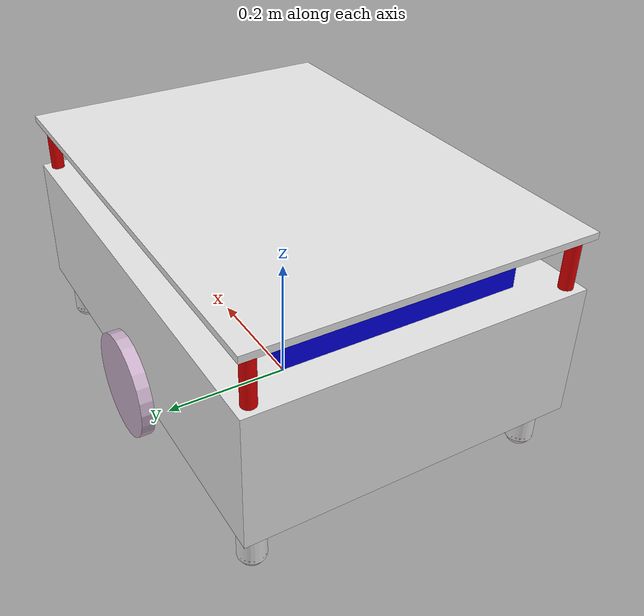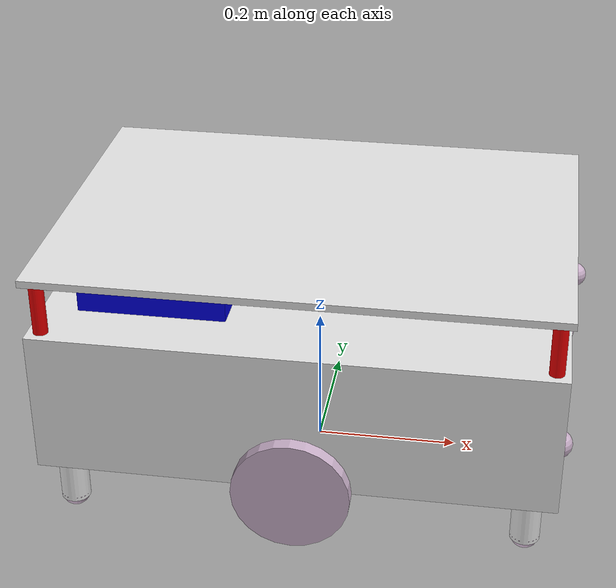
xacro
<?xml version="1.0"?>
<robot name="agv_model" xmlns:xacro="http://www.ros.org/wiki/xacro">

    <xacro:property name="base_length" value="0.7"/>
    <xacro:property name="base_width" value="0.5"/>
    <xacro:property name="base_height" value="0.2"/>

    <xacro:macro name = "box_inertia" params="m l w h xyz rpy">
        <inertial>
            <origin xyz="${xyz}" rpy="${rpy}"/>
            <mass value="${m}"/>
            <inertia ixx="${(m/12.0) * (h*h + l*l)}" ixy="0" ixz="0"
            iyy="${(m/12.0) * (w*w + l*l)}" iyz="0"
            izz="${(m/12.0) * (w*w + h*h)}"/>
        </inertial>
    </xacro:macro>

    <xacro:macro name = "cylinder_inertia" params = "m r h xyz rpy">
        <inertial>
            <origin xyz="${xyz}" rpy="${rpy}"/>
            <mass value="${m}"/>
            <inertia ixx="${(m/12.0) * (3*r*r + h*h)}" ixy="0" ixz="0"
            iyy="${(m/12.0) * (3*r*r + h*h)}" iyz="0"
            izz="${(m/2.0) * (r*r)}" />
        </inertial>
    </xacro:macro>

    <xacro:macro name = "sphere_inertia" params = "m r xyz rpy">
        <inertial>
            <origin xyz="${xyz}" rpy="${rpy}"/>
            <mass value="${m}"/>
            <inertia ixx="${(2/5) * (m * r*r)}" ixy="0" ixz="0"
                     iyy="${(2/5) * (m * r*r)}" iyz="0"
                     izz="${(2/5) * (m * r*r)}"/>
        </inertial>
    </xacro:macro>

    <material name = "White">
        <color rgba="0.9 0.9 0.9 1.0"/>
    </material>

    <material name = "Grey">
        <color rgba = "0.8 0.7 0.8"/>
    </material>

    <material name = "Red">
        <color rgba = "0.9 0.0 0.0 1.0"/>
    </material>

    <material name = "Green">
        <color rgba = "0.0 0.9 0.0 1.0"/>
    </material>

    <material name = "Blue">
        <color rgba = "0.0 0.0 0.9 1.0"/>
    </material>

    <link name = "base_footprint"/>

    <gazebo reference="base_link">
        <material>Gazebo/Orange</material>
    </gazebo>

    <gazebo reference="right_wheel_link">
        <material>Gazebo/Grey</material>
    </gazebo>

    <gazebo reference="left_wheel_link">
        <material>Gazebo/Grey</material>
    </gazebo>

    <gazebo reference="right_front_caster_wheel_link">
        <material>Gazebo/Grey</material>
        <mu1 value="0.1"/>
        <mu2 value="0.1"/>
    </gazebo>

    <gazebo reference="right_back_caster_wheel_link">
        <material>Gazebo/Grey</material>
        <mu1 value="0.1"/>
        <mu2 value="0.1"/>
    </gazebo>

    <gazebo reference="left_front_caster_wheel_link">
        <material>Gazebo/Grey</material>
        <mu1 value="0.1"/>
        <mu2 value="0.1"/>
    </gazebo>

    <gazebo reference="left_back_caster_wheel_link">
        <material>Gazebo/Grey</material>
        <mu1 value="0.1"/>
        <mu2 value="0.1"/>
    </gazebo>

    <gazebo reference="second_link">
        <material>Gazebo/Grey</material>
    </gazebo>

    <gazebo>
        <plugin name="differential_drive_controller" filename="libgazebo_ros_diff_drive.so">
            <always_on>true</always_on>
            <legacy_mode>false</legacy_mode>
            <update_rate>40</update_rate>
            <left_joint>left_wheel_base_joint</left_joint>
            <right_joint>right_wheel_base_joint</right_joint>
            <wheel_separation>0.52</wheel_separation>
            <wheel_diameter>0.16</wheel_diameter>
            <torque>20</torque>
            <command_topic>/cmd_vel:cmd_vel</command_topic>
            <odometry_topic>odom</odometry_topic>
            <odometry_frame>odom</odometry_frame>
            <robot_base_frame>base_footprint</robot_base_frame>
        </plugin>
    </gazebo>

    <gazebo reference="camera_link">
        <material>Gazebo/Grey</material>
        <sensor name="camera_sensor" type="camera">
            <pose>0 0 0 0 0 0</pose>
            <visualize>true</visualize>
            <update_rate>20.0</update_rate>
            <plugin name="camera_controller" filename="libgazebo_ros_camera.so">
                <frame_name>camera_link_frame</frame_name>
            </plugin>
        </sensor>
    </gazebo>

    <link name = "base_link">
        <visual>
            <geometry>
                <box size="0.7 0.5 0.2"/>
            </geometry>
            <origin xyz="0 0 0.1" rpy="0 0 0"/>
            <material name = "White"/>
        </visual>
        <collision>
            <geometry>
                <box size="0.7 0.5 0.2"/>
            </geometry>
            <origin xyz="0 0 0.1" rpy="0 0 0"/>
        </collision>
        <xacro:box_inertia m="10.0" l="0.2" w="0.7" h="0.5"
                           xyz="0 0 0.1 " rpy="0 0 0"/>
    </link>

    <link name = "second_link">
        <visual>
            <geometry>
                <box size = "0.1 0.14 0.06"/>
            </geometry>
            <origin xyz = "-0.15 0.0 0.033" rpy="0.0 0.0 0.0"/>
            <material name = "Blue"/>
        </visual>
        <collision>
            <geometry>
                <box size = "0.1 0.14 0.06"/>
            </geometry>
            <origin xyz = "-0.15 0.0 0.033" rpy="0.0 0.0 0.0"/>
        </collision>
        <xacro:box_inertia m="0.5" l="0.06" w="0.1" h="0.14"
                           xyz="-0.15 0.0 0.033" rpy="0.0 0.0 0.0"/>
    </link>

    <link name = "control_box_link">
        <visual>
            <geometry>
                <box size = "0.2 0.34 0.05"/>
            </geometry>
            <origin xyz = "-0.15 0.0 0.026" rpy="0.0 0.0 0.0"/>
            <material name = "Blue"/>
        </visual>
        <collision>
            <geometry>
                <box size = "0.2 0.34 0.05"/>
            </geometry>
            <origin xyz = "-0.15 0.0 0.026" rpy="0.0 0.0 0.0"/>
        </collision>
        <xacro:box_inertia m="1.0" l="0.05" w="0.2" h="0.34"
                           xyz="-0.15 0.0 0.026" rpy="0.0 0.0 0.0"/>
    </link>

    <link name = "third_link">
        <visual>
            <geometry>
                <cylinder radius="0.01" length="0.08"/>
            </geometry>
            <origin xyz = "-0.018 0 0.04" rpy = "0 0 0"/>
            <material name = "Red"/>
        </visual>
        <collision>
            <geometry>
                <cylinder radius="0.01" length="0.08"/>
            </geometry>
            <origin xyz = "-0.018 0 0.04" rpy = "0 0 0"/>
        </collision>
        <xacro:cylinder_inertia m="0.3" r="0.01" h="0.08"
                                xyz="-0.018 0 0.04" rpy="0 0 0"/>
    </link>

    <link name = "fourth_link">
        <visual>
            <geometry>
                <cylinder radius="0.01" length="0.08"/>
            </geometry>
            <origin xyz = "-0.018 0 0.04" rpy = "0 0 0"/>
            <material name = "Red"/>
        </visual>
        <collision>
            <geometry>
                <cylinder radius="0.01" length="0.08"/>
            </geometry>
            <origin xyz = "-0.018 0 0.04" rpy = "0 0 0"/>
        </collision>
        <xacro:cylinder_inertia m="0.3" r="0.01" h="0.08"
                                xyz="-0.018 0 0.04" rpy="0 0 0"/>
    </link>

    <link name = "fifth_link">
        <visual>
            <geometry>
                <cylinder radius="0.01" length="0.08"/>
            </geometry>
            <origin xyz = "0.018 0 0.04" rpy = "0 0 0"/>
            <material name = "Red"/>
        </visual>
        <collision>
            <geometry>
                <cylinder radius="0.01" length="0.08"/>
            </geometry>
            <origin xyz = "0.018 0 0.04" rpy = "0 0 0"/>
        </collision>
        <xacro:cylinder_inertia m="0.3" r="0.01" h="0.08"
                                xyz="0.018 0 0.04" rpy="0 0 0"/>
    </link>

    <link name = "sixth_link">
        <visual>
            <geometry>
                <cylinder radius="0.01" length="0.08"/>
            </geometry>
            <origin xyz = "0.018 0 0.04" rpy = "0 0 0"/>
            <material name = "Red"/>
        </visual>
        <collision>
            <geometry>
                <cylinder radius="0.01" length="0.08"/>
            </geometry>
            <origin xyz = "0.018 0 0.04" rpy = "0 0 0"/>
        </collision>
        <xacro:cylinder_inertia m="0.3" r="0.01" h="0.08"
                                xyz="0.018 0 0.04" rpy="0 0 0"/>
    </link>

    <link name = "seventh_link">
        <visual>
            <geometry>
                 <box size="0.7 0.5 0.01"/>
            </geometry>
            <origin xyz = "-0.35 0 0.02" rpy = "0 0 0"/>
            <material name = "White"/>
        </visual>
        <collision>
            <geometry>
                 <box size="0.7 0.5 0.01"/>
            </geometry>
            <origin xyz = "-0.35 0 0.02" rpy = "0 0 0"/>
        </collision>
        <xacro:box_inertia m="4.0" l="0.01" w="0.7" h="0.5"
                           xyz="-0.35 0 0.02" rpy="0 0 0"/>
    </link>

    <link name = "right_wheel_link">
        <visual>
            <geometry>
                <cylinder radius="0.08" length="0.02"/>
            </geometry>
            <origin xyz = "0 0.01 0" rpy = "1.57 0 0"/>
            <material name = "Grey"/>
        </visual>
        <collision>
            <geometry>
                <cylinder radius="0.08" length="0.02"/>
            </geometry>
            <origin xyz = "0 0.01 0" rpy = "1.57 0 0"/>
        </collision>
        <xacro:cylinder_inertia m="1.0" r="0.08" h="0.02"
                                xyz="0 0.01 0" rpy="1.57 0 0"/>
    </link>

    <link name = "right_front_caster_link">
        <visual>
            <geometry>
                <cylinder radius="0.02" length="0.08"/>
            </geometry>
            <origin xyz = "0 0 0" rpy ="0 0 0"/>
            <material name = "White"/>
        </visual>
        <collision>
            <geometry>
                <cylinder radius="0.02" length="0.08"/>
            </geometry>
            <origin xyz = "0 0 0" rpy ="0 0 0"/>
        </collision>
        <xacro:cylinder_inertia m="0.5" r="0.02" h="0.08"
                        xyz="0 0 0" rpy="0 0 0"/>
    </link>

    <link name = "right_front_caster_wheel_link">
        <visual>
            <geometry>
                <sphere radius="0.02"/>
            </geometry>
            <origin xyz = "0 0 0" rpy ="0 0 0"/>
            <material name = "Grey"/>
        </visual>
        <collision>
            <geometry>
                <sphere radius="0.02"/>
            </geometry>
            <origin xyz = "0 0 0" rpy ="0 0 0"/>
        </collision>
        <xacro:sphere_inertia m="0.3" r="0.02"
                           xyz="0 0 0 " rpy="0 0 0"/>
    </link>

    <link name = "right_back_caster_link">
        <visual>
            <geometry>
                <cylinder radius="0.02" length="0.08"/>
            </geometry>
            <origin xyz = "0 0 0" rpy ="0 0 0"/>
            <material name = "White"/>
        </visual>
        <collision>
            <geometry>
                <cylinder radius="0.02" length="0.08"/>
            </geometry>
            <origin xyz = "0 0 0" rpy ="0 0 0"/>
        </collision>
        <xacro:cylinder_inertia m="0.5" r="0.02" h="0.08"
                        xyz="0 0 0" rpy="0 0 0"/>
    </link>

    <link name = "right_back_caster_wheel_link">
        <visual>
            <geometry>
                <sphere radius="0.02"/>
            </geometry>
            <origin xyz = "0 0 0" rpy ="0 0 0"/>
            <material name = "Grey"/>
        </visual>
        <collision>
            <geometry>
                <sphere radius="0.02"/>
            </geometry>
            <origin xyz = "0 0 0" rpy ="0 0 0"/>
        </collision>
        <xacro:sphere_inertia m="0.3" r="0.02"
                           xyz="0 0 0 " rpy="0 0 0"/>
    </link>

    <link name = "left_wheel_link">
        <visual>
            <geometry>
                <cylinder radius="0.08" length="0.02"/>
            </geometry>
            <origin xyz = "0 -0.01 0" rpy = "1.57 0 0"/>
            <material name = "Grey"/>
        </visual>
        <collision>
            <geometry>
                <cylinder radius="0.08" length="0.02"/>
            </geometry>
            <origin xyz = "0 -0.01 0" rpy = "1.57 0 0"/>
        </collision>
        <xacro:cylinder_inertia m="1.0" r="0.08" h="0.02"
                        xyz="0 -0.01 0" rpy="1.57 0 0"/>
    </link>

    <link name = "left_front_caster_link">
        <visual>
            <geometry>
                <cylinder radius="0.02" length="0.08"/>
            </geometry>
            <origin xyz = "0 0 0" rpy ="0 0 0"/>
            <material name = "White"/>
        </visual>
        <collision>
            <geometry>
                <cylinder radius="0.02" length="0.08"/>
            </geometry>
            <origin xyz = "0 0 0" rpy ="0 0 0"/>
        </collision>
        <xacro:cylinder_inertia m="0.5" r="0.02" h="0.08"
                        xyz="0 0 0" rpy="0 0 0"/>
    </link>

    <link name = "left_front_caster_wheel_link">
        <visual>
            <geometry>
                <sphere radius="0.02"/>
            </geometry>
            <origin xyz = "0 0 0" rpy ="0 0 0"/>
            <material name = "Grey"/>
        </visual>
        <collision>
            <geometry>
                <sphere radius="0.02"/>
            </geometry>
            <origin xyz = "0 0 0" rpy ="0 0 0"/>
        </collision>
        <xacro:sphere_inertia m="0.3" r="0.02"
                           xyz="0 0 0 " rpy="0 0 0"/>
    </link>

    <link name = "left_back_caster_link">
        <visual>
            <geometry>
                <cylinder radius="0.02" length="0.08"/>
            </geometry>
            <origin xyz = "0 0 0" rpy ="0 0 0"/>
            <material name = "White"/>
        </visual>
        <collision>
            <geometry>
                <cylinder radius="0.02" length="0.08"/>
            </geometry>
            <origin xyz = "0 0 0" rpy ="0 0 0"/>
        </collision>
        <xacro:cylinder_inertia m="0.5" r="0.02" h="0.08"
                        xyz="0 0 0" rpy="0 0 0"/>
    </link>

    <link name = "left_back_caster_wheel_link">
        <visual>
            <geometry>
                <sphere radius="0.02"/>
            </geometry>
            <origin xyz = "0 0 0" rpy ="0 0 0"/>
            <material name = "Grey"/>
        </visual>
        <collision>
            <geometry>
                <sphere radius="0.02"/>
            </geometry>
            <origin xyz = "0 0 0" rpy ="0 0 0"/>
        </collision>
        <xacro:sphere_inertia m="0.3" r="0.02"
                              xyz="0 0 0 " rpy="0 0 0"/>
    </link>

    <link name = "right_bush_link">
        <visual>
            <geometry>
                 <sphere radius="0.02"/>
            </geometry>
            <origin xyz = "0 0 0" rpy ="0 0 0"/>
            <material name = "Grey"/>
        </visual>
        <collision>
            <geometry>
                 <sphere radius="0.02"/>
            </geometry>
            <origin xyz = "0 0 0" rpy ="0 0 0"/>
        </collision>
        <xacro:sphere_inertia m="0.2" r="0.02"
                              xyz="0 0 0 " rpy="0 0 0"/>
    </link>

    <link name = "left_bush_link">
        <visual>
            <geometry>
                 <sphere radius="0.02"/>
            </geometry>
            <origin xyz = "0 0 0" rpy ="0 0 0"/>
            <material name = "Grey"/>
        </visual>
        <collision>
            <geometry>
                 <sphere radius="0.02"/>
            </geometry>
            <origin xyz = "0 0 0" rpy ="0 0 0"/>
        </collision>
        <xacro:sphere_inertia m="0.2" r="0.02"
                              xyz="0 0 0 " rpy="0 0 0"/>
    </link>

    <link name = "camera_base_link">
        <visual>
            <geometry>
                <box size = "0.02 0.1 0.04"/>
            </geometry>
            <origin xyz = "0.02 0 0.02" rpy="0 0 0"/>
            <material name = "Blue"/>
        </visual>
        <collision>
            <geometry>
                <box size = "0.02 0.1 0.04"/>
            </geometry>
            <origin xyz = "0.02 0 0.02" rpy="0 0 0"/>
        </collision>
        <xacro:box_inertia m="0.04" l="0.04" w="0.02" h="0.1"
                           xyz="0.02 0 0.02" rpy="0 0 0"/>
    </link>

    <link name = "camera_link">
        <visual>
            <geometry>
                 <sphere radius="0.016"/>
            </geometry>
            <origin xyz = "0 0 0" rpy ="0 0 0"/>
            <material name = "Grey"/>
        </visual>
        <collision>
            <geometry>
                 <sphere radius="0.016"/>
            </geometry>
            <origin xyz = "0 0 0" rpy ="0 0 0"/>
        </collision>
        <xacro:sphere_inertia m="0.1" r="0.016"
                              xyz="0 0 0 " rpy="0 0 0"/>
    </link>

    <link name="camera_link_frame" type="fixed">
    </link>

    <joint name = "base_joint" type = "fixed">
        <parent link = "base_footprint"/>
        <child link = "base_link"/>
        <origin xyz="0 0 0.08" rpy="0 0 0"/>
    </joint>

    <joint name = "base_second_joint" type = "fixed">
        <parent link = "base_link"/>
        <child link = "second_link"/>
        <origin xyz="0.35 0 0.2 " rpy = "0 0 0"/>
    </joint>

    <joint name = "base_control_box_joint" type = "fixed">
        <parent link = "base_link"/>
        <child link = "control_box_link"/>
        <origin xyz="-0.05 0 0.2 " rpy = "0 0 0"/>
    </joint>

    <joint name = "second_third_joint" type = "fixed">
        <parent link = "second_link"/>
        <child link = "third_link"/>
        <origin xyz="0.0 0.23 0" rpy="0 0 0"/>
    </joint>

    <joint name = "second_fourth_joint" type = "fixed">
        <parent link = "second_link"/>
        <child link = "fourth_link"/>
        <origin xyz="0.0 -0.23 0" rpy="0 0 0"/>
    </joint>

    <joint name = "second_fifth_joint" type = "fixed">
        <parent link = "second_link"/>
        <child link = "fifth_link"/>
        <origin xyz="-0.7 -0.23 0" rpy="0 0 0"/>
    </joint>

    <joint name = "second_sixth_joint" type = "fixed">
        <parent link = "second_link"/>
        <child link = "sixth_link"/>
        <origin xyz="-0.7 0.23 0" rpy="0 0 0"/>
    </joint>

    <joint name = "second_seventh_joint" type = "fixed">
        <parent link = "second_link"/>
        <child link = "seventh_link"/>
        <origin xyz="0 0 0.06" rpy="0 0 0"/>
    </joint>

    <joint name = "right_wheel_base_joint" type = "continuous">
        <parent link = "base_link"/>
        <child link = "right_wheel_link"/>
        <origin xyz="0 0.25 0" rpy="0 0 0"/>
        <axis xyz="0 1 0"/>
    </joint>

    <joint name = "right_front_caster_base_joint" type = "fixed">
        <parent link = "base_link"/>
        <child link = "right_front_caster_link"/>
        <origin xyz="-0.31 -0.22 -0.025" rpy="0 0 0"/>
    </joint>

     <joint name = "wheel_right_front_caster_base_joint" type = "fixed">
        <parent link = "right_front_caster_link"/>
        <child link = "right_front_caster_wheel_link"/>
        <origin xyz="0 0 -0.035" rpy="0 0 0"/>
    </joint>

    <joint name = "right_back_caster_base_joint" type = "fixed">
        <parent link = "base_link"/>
        <child link = "right_back_caster_link"/>
        <origin xyz="0.31 -0.22 -0.025" rpy="0 0 0"/>
    </joint>

     <joint name = "wheel_right_back_caster_base_joint" type = "fixed">
        <parent link = "right_back_caster_link"/>
        <child link = "right_back_caster_wheel_link"/>
        <origin xyz="0 0 -0.035" rpy="0 0 0"/>
    </joint>

    <joint name = "left_wheel_base_joint" type = "continuous">
        <parent link = "base_link"/>
        <child link = "left_wheel_link"/>
        <origin xyz="0 -0.25 0" rpy="0 0 0"/>
        <axis xyz="0 1 0"/>
    </joint>

    <joint name = "left_front_caster_base_joint" type = "fixed">
        <parent link = "base_link"/>
        <child link = "left_front_caster_link"/>
        <origin xyz="-0.31 0.22 -0.025" rpy="0 0 0"/>
    </joint>

     <joint name = "wheel_left_front_caster_base_joint" type = "fixed">
        <parent link = "left_front_caster_link"/>
        <child link = "left_front_caster_wheel_link"/>
        <origin xyz="0 0 -0.035" rpy="0 0 0"/>
    </joint>

    <joint name = "left_back_caster_base_joint" type = "fixed">
        <parent link = "base_link"/>
        <child link = "left_back_caster_link"/>
        <origin xyz="0.31 0.22 -0.025" rpy="0 0 0"/>
    </joint>

     <joint name = "wheel_left_back_caster_base_joint" type = "fixed">
        <parent link = "left_back_caster_link"/>
        <child link = "left_back_caster_wheel_link"/>
        <origin xyz="0 0 -0.035" rpy="0 0 0"/>
    </joint>

    <joint name = "right_bush_base_joint" type = "fixed">
        <parent link = "base_link"/>
        <child link = "right_bush_link"/>
        <origin xyz="0.345 0.15 0.04" rpy="0 0 0"/>
    </joint>

    <joint name = "left_bush_base_joint" type = "fixed">
        <parent link = "base_link"/>
        <child link = "left_bush_link"/>
        <origin xyz="0.345 -0.15 0.04" rpy="0 0 0"/>
    </joint>

    <joint name = "camera_base_base_joint" type = "fixed">
        <parent link = "base_link"/>
        <child link = "camera_base_link"/>
        <origin xyz="0.32 0 0.2" rpy="0 0 0"/>
    </joint>

    <joint name = "camera_camera_base_joint" type = "fixed">
        <parent link = "camera_base_link"/>
        <child link = "camera_link"/>
        <origin xyz="0.03 0 0.018" rpy="0 0 0"/>
    </joint>

    <joint name="camera_frame_camera_joint" type="fixed">
        <origin xyz="0 0 0" rpy="${-pi/2} 0 ${-pi/2}"/>
        <parent link="camera_link"/>
        <child link="camera_link_frame"/>
    </joint>

</robot>
